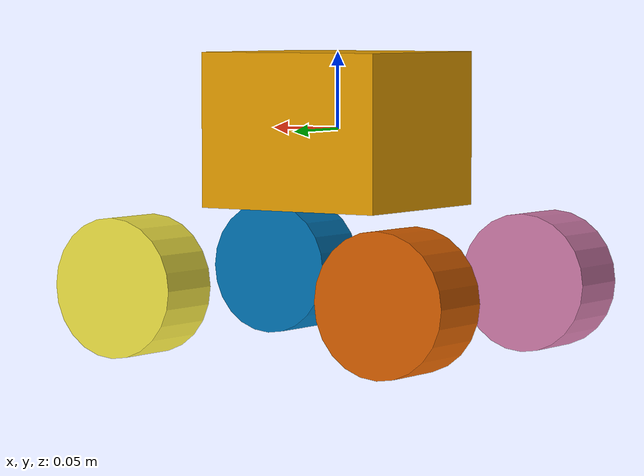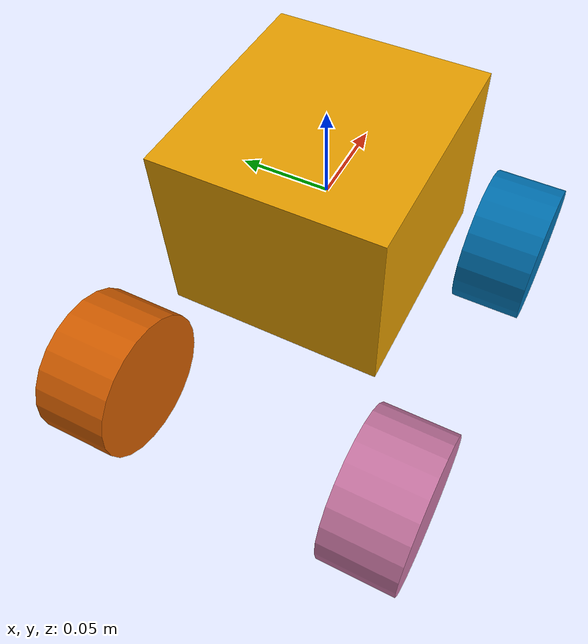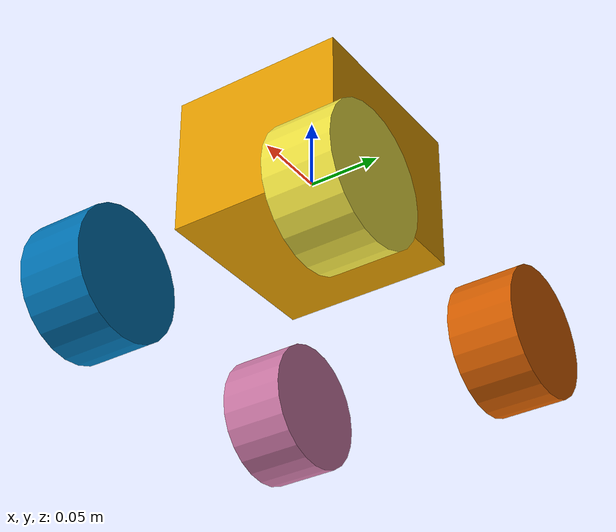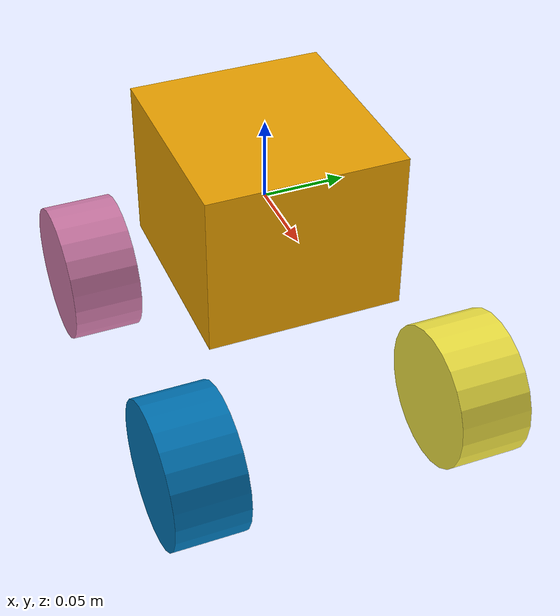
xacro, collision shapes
<?xml version="1.0"?>

<robot name="limo_four_diff_robot" xmlns:xacro="http://ros.org/wiki/xacro">
    <!-- a lightweight robot geometry model -->
    <xacro:arg name="model_lite" default="true" />

    <xacro:include filename="$(find for_open_scout)/urdf/limo_robot.xacro" />

    <!-- Variables -->
    <xacro:property name="M_PI" value="3.14159"/>

    <!-- Vehicle Geometries -->
    <xacro:property name="base_x_size" value="0.13" />
    <xacro:property name="base_y_size" value="0.12" />
    <xacro:property name="base_z_size" value="0.1" />

    <xacro:property name="wheelbase" value="0.2"/>
    <xacro:property name="track" value="0.13"/>
    <xacro:property name="wheel_vertical_offset" value="-0.10" />
    <xacro:property name="base_mass" value="2.1557"/>

    <xacro:property name="wheel_length" value="0.045" />
    <xacro:property name="wheel_radius" value="0.045" />

    <!-- Base link -->
    <link name="base_link">
        <visual>
            <origin xyz="0 0 -0.15" rpy="0 0 1.57" />
            <geometry>
                <xacro:if value="$(arg model_lite)">
                    <mesh filename="file://$(find for_open_scout)/models/limo_base_lite.dae" scale="1 1 1"/>
                </xacro:if>
                <xacro:unless value="$(arg model_lite)">
                    <mesh filename="file://$(find for_open_scout)/models/limo_base.dae" scale="1 1 1"/>
                </xacro:unless>
            </geometry>
        </visual>
        <collision>
            <!--origin xyz="0 0 -0.15" rpy="0 0 1.57" /-->
            <origin xyz="0 0 0" rpy="0 0 0" />
            <geometry>
                <box size="${base_x_size} ${base_y_size} ${base_z_size}"/>
            </geometry>
        </collision>
    </link>

    <link name="base_footprint"/>

    <joint name="base_joint" type="fixed">
        <parent link="base_link"/>
        <child link="base_footprint"/>
        <origin xyz="0.0 0.0 -0.15" rpy="0 0 0"/>
    </joint>

    <link name="inertial_link">
        <inertial>
            <origin xyz="0.0 0.0 0.0" />
            <mass value="${base_mass}" />
            <inertia ixx="0.24" ixy="0" ixz="0" iyy="0.96" iyz="0" izz="0.96" />
        </inertial>
    </link>

    <joint name="inertial_joint" type="fixed">
        <origin xyz="0 0 0" rpy="0 0 0" />
        <parent link="base_link" />
        <child link="inertial_link" />
    </joint>

    <xacro:limo_wheel parent_prefix="base_link" wheel_prefix="front_left" reflect="1" model_lite="$(arg model_lite)">
        <origin xyz="${wheelbase/2} ${track/2} ${wheel_vertical_offset}" rpy="0 0  0" />
    </xacro:limo_wheel>

    <xacro:limo_wheel parent_prefix="base_link" wheel_prefix="front_right" reflect="-1" model_lite="$(arg model_lite)">
        <origin xyz="${wheelbase/2} ${-track/2} ${wheel_vertical_offset}" rpy="${M_PI} 0 0" />
    </xacro:limo_wheel>

    <xacro:limo_wheel parent_prefix="base_link" wheel_prefix="rear_left" reflect="1" model_lite="$(arg model_lite)">
        <origin xyz="${-wheelbase/2} ${track/2} ${wheel_vertical_offset}" rpy="0 0 0" />
    </xacro:limo_wheel>

    <xacro:limo_wheel parent_prefix="base_link" wheel_prefix="rear_right" reflect="-1" model_lite="$(arg model_lite)">
        <origin xyz="${-wheelbase/2} ${-track/2} ${wheel_vertical_offset}" rpy="${M_PI} 0 0" />
    </xacro:limo_wheel>

</robot>

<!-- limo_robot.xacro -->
<robot name="limo_robot" xmlns:xacro="http://ros.org/wiki/xacro">
    <xacro:macro name="limo_wheel" params="parent_prefix wheel_prefix reflect model_lite *joint_pose">
        <link name="${wheel_prefix}_wheel_link">
            <inertial>
                <origin xyz="0 0 0" />
                <mass value="0.5" />
                <inertia ixx="0.01055" ixy="0" ixz="0" iyy="0.00075" iyz="0" izz="0.01055" />
            </inertial>
            <visual>
                <origin xyz="0 0 0" rpy="0 0 0" />
                <geometry>
                    <xacro:if value="${model_lite}">
                        <mesh filename="file://$(find limo_description)/meshes/limo_wheel_lite.dae"/>
                    </xacro:if>
                    <xacro:unless value="${model_lite}">
                        <mesh filename="file://$(find limo_description)/meshes/limo_wheel.dae"/>
                    </xacro:unless>
                </geometry>
            </visual>
            <collision>
              <origin xyz="0 ${wheel_length/2} 0" rpy="1.57 0 0" />
              <geometry>
                  <cylinder length="${wheel_length}" radius="${wheel_radius}" />
              </geometry>
            </collision>
        </link>

        <joint name="${wheel_prefix}_wheel" type="continuous">
            <parent link="${parent_prefix}"/>
            <child link="${wheel_prefix}_wheel_link"/>
            <xacro:insert_block name="joint_pose"/>
            <axis xyz="0 ${reflect*1} 0"/>
        </joint>
    </xacro:macro>

</robot>
